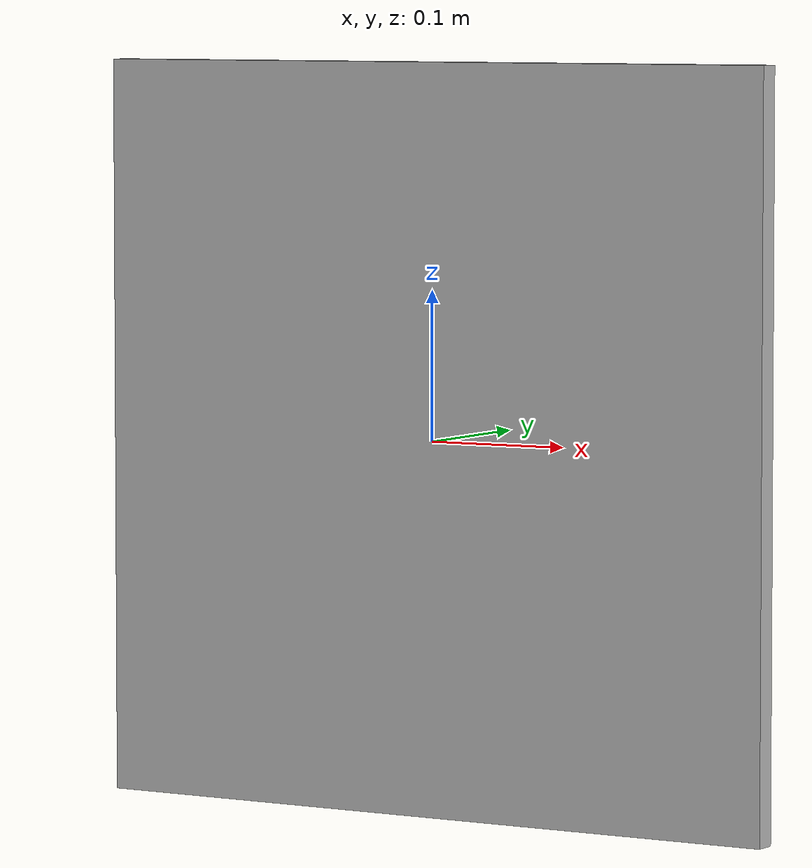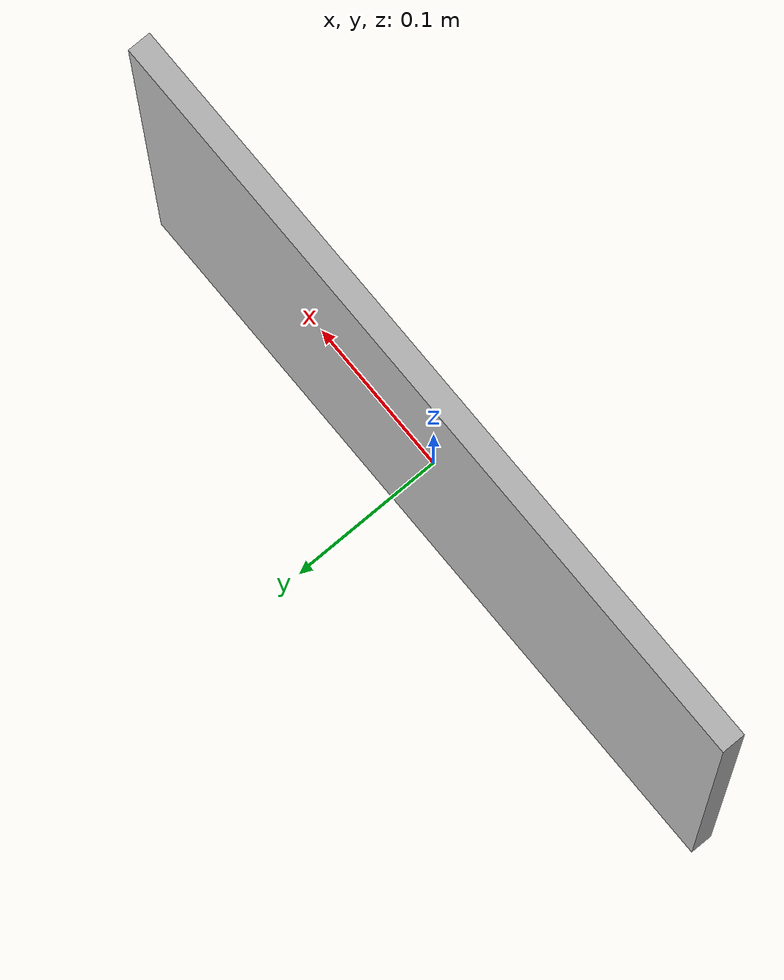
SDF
<?xml version="1.0" ?>
<sdf version="1.6">
  <model name="pizza">
    <static>true</static>
    <link name="box">
      <pose>0 0 0 0 0 0</pose>
      <collision name="collision">
        <geometry>
          <box>
            <size>0.5 0.015 0.5</size>
          </box>
        </geometry>
      </collision>
      <visual name="visual">
        <geometry>
          <box>
            <size>0.5 0.015 0.5</size>
          </box>
        </geometry>
        <material>
          <script>
            <uri>model://pizza/materials/scripts</uri>
            <uri>model://pizza/materials/textures</uri>
            <name>pizza</name>
          </script>
        </material>
      </visual>
    </link>
  </model>
</sdf>
